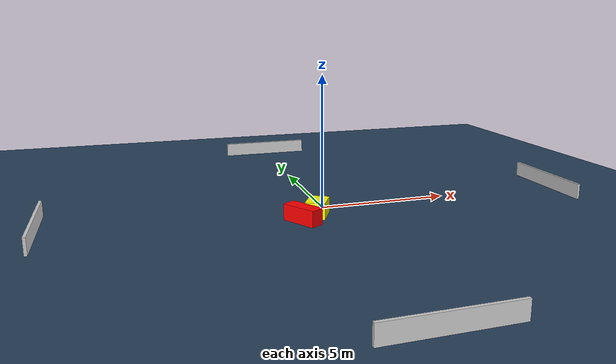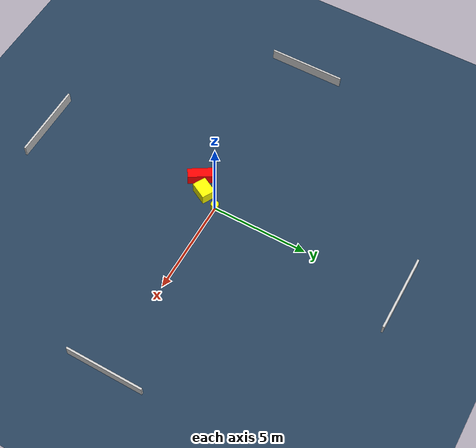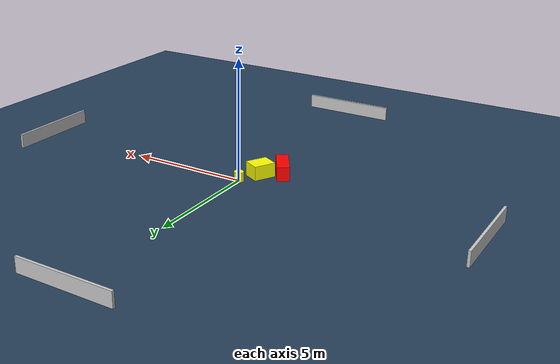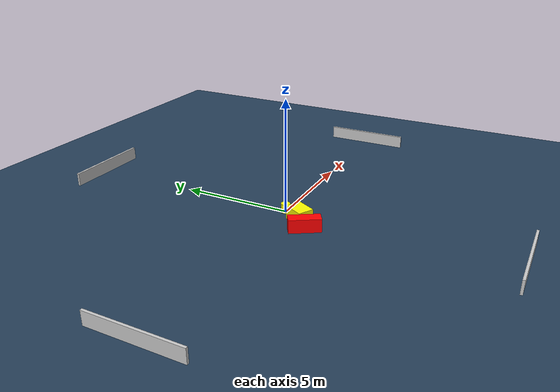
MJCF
<?xml version="1.0" ?>
<mujoco model="generated_environment">
  <option timestep="0.01" integrator="RK4" cone="elliptic"/>
  <default>
    <geom density="1"/>
  </default>
  <asset>
    <texture builtin="gradient" height="3072" name="skybox" rgb1="0.3 0.5 0.7" rgb2="0 0 0" type="skybox" width="512"/>
    <texture builtin="checker" height="300" name="groundplane" rgb1="0.2 0.3 0.4" rgb2="0.1 0.2 0.3" type="2d" width="300"/>
    <material name="groundplane" reflectance="0.2" texrepeat="5 5" texture="groundplane"/>
  </asset>
  <worldbody>
    <light dir="0 0 -1" directional="true" pos="0 0 1.5"/>
    <geom condim="3" friction="0.5 0.005 0.001" material="groundplane" name="floor" pos="0 0 0" size="0 0 0.05" type="plane"/>
    <body name="walls">
      <geom name="wall_1" condim="4" pos="-10.0 0.0 0.3" rgba="0.800000011920929 0.800000011920929 0.800000011920929 1.0" size="0.05 2.0 0.3" type="box"/>
      <geom name="wall_2" condim="4" pos="10.0 0.0 0.3" rgba="0.800000011920929 0.800000011920929 0.800000011920929 1.0" size="0.05 2.0 0.3" type="box"/>
      <geom name="wall_3" condim="4" pos="0.0 -10.0 0.3" rgba="0.800000011920929 0.800000011920929 0.800000011920929 1.0" size="2.0 0.05 0.3" type="box"/>
      <geom name="wall_4" condim="4" pos="0.0 10.0 0.3" rgba="0.800000011920929 0.800000011920929 0.800000011920929 1.0" size="2.0 0.05 0.3" type="box"/>
    </body>
    <body name="robot">
      <joint name="joint_x" type="slide" pos="0 0 0" axis="1 0 0"/>
      <joint name="joint_y" type="slide" pos="0 0 0" axis="0 1 0"/>
      <geom name="robot" type="cylinder" pos="0.0 0.0 0.2" size="0.2 0.2 0.0" mass="5.0" friction="1.0 0.005 0.0001" condim="4" rgba="1.0 1.0 0.0 1.0"/>
    </body>
    <body name="obstacle_1_movable">
      <geom name="obstacle_1_movable" condim="4" pos="-0.46113709466885355 -0.8882186670636196 0.3" euler="0 0 241.96767074534478" friction="0.0 0.005 0.001" rgba="1.0 1.0 0.0 1.0" size="0.4675967201770205 0.3606398783607775 0.3" type="box" mass="0.1"/>
      <joint type="free"/>
    </body>
    <body name="obstacle_2_static">
      <geom name="obstacle_2_static" condim="4" pos="-1.163557826664878 -1.4572474630897487 0.3" euler="0 0 121.87155689576322" friction="0.0 0.005 0.001" rgba="1.0 0.0 0.0 1.0" size="0.6863042134603203 0.25875630769953684 0.3" type="box"/>
    </body>
  </worldbody>
  <actuator>
    <motor name="actuator_x" joint="joint_x" gear="1" ctrlrange="-1 1"/>
    <motor name="actuator_y" joint="joint_y" gear="1" ctrlrange="-1 1"/>
  </actuator>
</mujoco>
